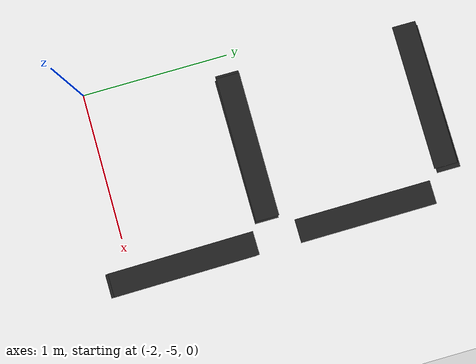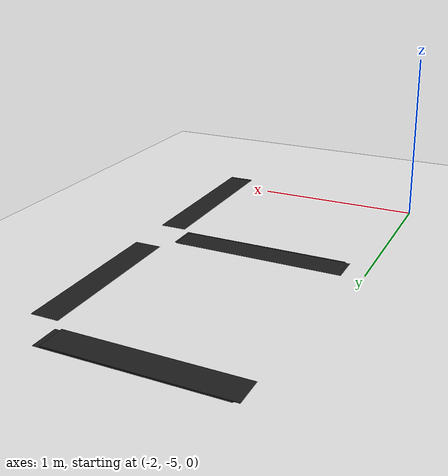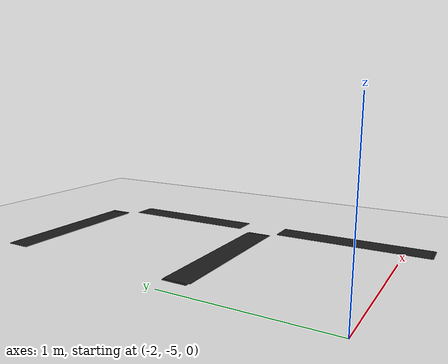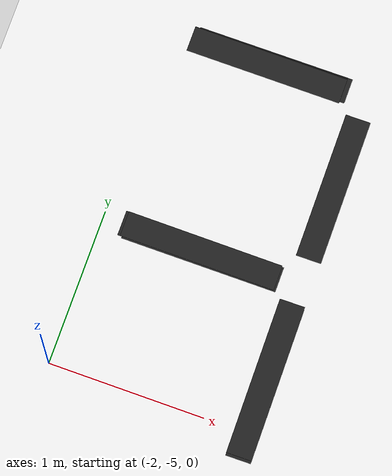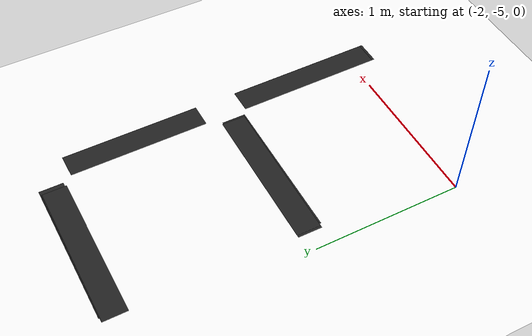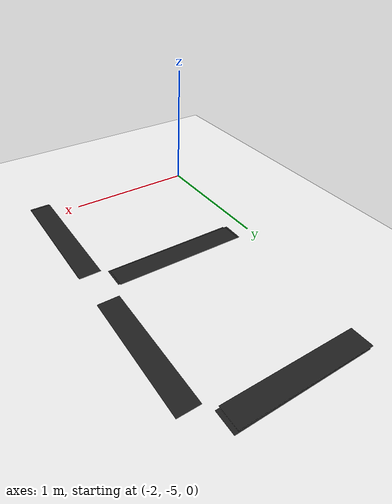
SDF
<sdf version="1.7">
 <world name="default">
  <model name="ground_plane">
   <static>1</static>
   <link name="link">
    <collision name="collision">
     <geometry><plane><normal>0 0 1</normal><size>100 100</size></plane></geometry>
     <surface>
      <contact><collide_bitmask>65535</collide_bitmask></contact>
      <friction><ode><mu>100</mu><mu2>50</mu2></ode></friction>
     </surface>
    </collision>
    <visual name="visual">
     <cast_shadows>0</cast_shadows>
     <geometry><plane><normal>0 0 1</normal><size>100 100</size></plane></geometry>
     <material>
      <script><uri>file://media/materials/scripts/gazebo.material</uri><name>Gazebo/White</name></script>
     </material>
    </visual>
   </link>
  </model>
  <model name="unit_box_clone_0_clone_clone_0_clone_0">
   <link name="link">
    <inertial>
     <mass>1</mass>
     <inertia>
      <ixx>0.166667</ixx>
      <ixy>0</ixy>
      <ixz>0</ixz>
      <iyy>0.166667</iyy>
      <iyz>0</iyz>
      <izz>0.166667</izz>
     </inertia>
    </inertial>
    <visual name="visual">
     <geometry><box><size>1 0.160776 0.000937</size></box></geometry>
     <material>
      <script><name>Gazebo/Black</name><uri>file://media/materials/scripts/gazebo.material</uri></script>
      <shader type="pixel"><normal_map>__default__</normal_map></shader>
      <ambient>0 0 0 1</ambient>
      <diffuse>0 0 0 1</diffuse>
      <specular>0.1 0.1 0.1 1</specular>
      <emissive>0 0 0 1</emissive>
     </material>
    </visual>
    <collision name="collision">
     <geometry><box><size>1 0.160776 0.000937</size></box></geometry>
     <surface>
      <friction>
       <ode><mu>1</mu><mu2>1</mu2><fdir1>0 0 0</fdir1><slip1>0</slip1><slip2>0</slip2></ode>
       <torsional>
        <coefficient>1</coefficient>
        <patch_radius>0</patch_radius>
        <surface_radius>0</surface_radius>
        <use_patch_radius>1</use_patch_radius>
        <ode><slip>0</slip></ode>
       </torsional>
      </friction>
      <bounce><restitution_coefficient>0</restitution_coefficient><threshold>1e+06</threshold></bounce>
      <contact>
       <collide_without_contact>0</collide_without_contact>
       <collide_without_contact_bitmask>1</collide_without_contact_bitmask>
       <collide_bitmask>1</collide_bitmask>
       <ode>
        <soft_cfm>0</soft_cfm>
        <soft_erp>0.2</soft_erp>
        <kp>1e+13</kp>
        <kd>1</kd>
        <max_vel>0.01</max_vel>
        <min_depth>0</min_depth>
       </ode>
       <bullet>
        <split_impulse>1</split_impulse>
        <split_impulse_penetration_threshold>-0.01</split_impulse_penetration_threshold>
        <soft_cfm>0</soft_cfm>
        <soft_erp>0.2</soft_erp>
        <kp>1e+13</kp>
        <kd>1</kd>
       </bullet>
      </contact>
     </surface>
    </collision>
   </link>
   <static>0</static>
   <pose>-1.3779 -2.78631 0.002306 3.1e-05 9e-06 -0.001043</pose>
  </model>
  <model name="unit_box_clone_0_clone_clone_0_clone_clone_clone_1">
   <link name="link">
    <inertial>
     <mass>1</mass>
     <inertia>
      <ixx>0.166667</ixx>
      <ixy>0</ixy>
      <ixz>0</ixz>
      <iyy>0.166667</iyy>
      <iyz>0</iyz>
      <izz>0.166667</izz>
     </inertia>
    </inertial>
    <visual name="visual">
     <geometry><box><size>1 0.160776 0.000937</size></box></geometry>
     <material>
      <script><name>Gazebo/Black</name><uri>file://media/materials/scripts/gazebo.material</uri></script>
      <shader type="pixel"><normal_map>__default__</normal_map></shader>
      <ambient>0 0 0 1</ambient>
      <diffuse>0 0 0 1</diffuse>
      <specular>0.1 0.1 0.1 1</specular>
      <emissive>0 0 0 1</emissive>
     </material>
    </visual>
    <collision name="collision">
     <geometry><box><size>1 0.160776 0.000937</size></box></geometry>
     <surface>
      <friction>
       <ode><mu>1</mu><mu2>1</mu2><fdir1>0 0 0</fdir1><slip1>0</slip1><slip2>0</slip2></ode>
       <torsional>
        <coefficient>1</coefficient>
        <patch_radius>0</patch_radius>
        <surface_radius>0</surface_radius>
        <use_patch_radius>1</use_patch_radius>
        <ode><slip>0</slip></ode>
       </torsional>
      </friction>
      <bounce><restitution_coefficient>0</restitution_coefficient><threshold>1e+06</threshold></bounce>
      <contact>
       <collide_without_contact>0</collide_without_contact>
       <collide_without_contact_bitmask>1</collide_without_contact_bitmask>
       <collide_bitmask>1</collide_bitmask>
       <ode>
        <soft_cfm>0</soft_cfm>
        <soft_erp>0.2</soft_erp>
        <kp>1e+13</kp>
        <kd>1</kd>
        <max_vel>0.01</max_vel>
        <min_depth>0</min_depth>
       </ode>
       <bullet>
        <split_impulse>1</split_impulse>
        <split_impulse_penetration_threshold>-0.01</split_impulse_penetration_threshold>
        <soft_cfm>0</soft_cfm>
        <soft_erp>0.2</soft_erp>
        <kp>1e+13</kp>
        <kd>1</kd>
       </bullet>
      </contact>
     </surface>
    </collision>
   </link>
   <static>0</static>
   <pose>-0.723808 -4.66654 0.00046 1e-06 -1.7e-05 -1.56214</pose>
  </model>
  <model name="unit_box_clone_0_clone_clone_0_clone_1_clone">
   <link name="link">
    <inertial>
     <mass>1</mass>
     <inertia>
      <ixx>0.166667</ixx>
      <ixy>0</ixy>
      <ixz>0</ixz>
      <iyy>0.166667</iyy>
      <iyz>0</iyz>
      <izz>0.166667</izz>
     </inertia>
    </inertial>
    <visual name="visual">
     <geometry><box><size>1 0.160776 0.000937</size></box></geometry>
     <material>
      <script><name>Gazebo/Black</name><uri>file://media/materials/scripts/gazebo.material</uri></script>
      <shader type="pixel"><normal_map>__default__</normal_map></shader>
      <ambient>0 0 0 1</ambient>
      <diffuse>0 0 0 1</diffuse>
      <specular>0.1 0.1 0.1 1</specular>
      <emissive>0 0 0 1</emissive>
     </material>
    </visual>
    <collision name="collision">
     <geometry><box><size>1 0.160776 0.000937</size></box></geometry>
     <surface>
      <friction>
       <ode><mu>1</mu><mu2>1</mu2><fdir1>0 0 0</fdir1><slip1>0</slip1><slip2>0</slip2></ode>
       <torsional>
        <coefficient>1</coefficient>
        <patch_radius>0</patch_radius>
        <surface_radius>0</surface_radius>
        <use_patch_radius>1</use_patch_radius>
        <ode><slip>0</slip></ode>
       </torsional>
      </friction>
      <bounce><restitution_coefficient>0</restitution_coefficient><threshold>1e+06</threshold></bounce>
      <contact>
       <collide_without_contact>0</collide_without_contact>
       <collide_without_contact_bitmask>1</collide_without_contact_bitmask>
       <collide_bitmask>1</collide_bitmask>
       <ode>
        <soft_cfm>0</soft_cfm>
        <soft_erp>0.2</soft_erp>
        <kp>1e+13</kp>
        <kd>1</kd>
        <max_vel>0.01</max_vel>
        <min_depth>0</min_depth>
       </ode>
       <bullet>
        <split_impulse>1</split_impulse>
        <split_impulse_penetration_threshold>-0.01</split_impulse_penetration_threshold>
        <soft_cfm>0</soft_cfm>
        <soft_erp>0.2</soft_erp>
        <kp>1e+13</kp>
        <kd>1</kd>
       </bullet>
      </contact>
     </surface>
    </collision>
   </link>
   <static>0</static>
   <pose>-1.38042 -4.03185 0.000408 0 0.000121 -0.004623</pose>
  </model>
  <model name="unit_box_clone_0_clone_clone_0_clone_0_clone">
   <link name="link">
    <inertial>
     <mass>1</mass>
     <inertia>
      <ixx>0.166667</ixx>
      <ixy>0</ixy>
      <ixz>0</ixz>
      <iyy>0.166667</iyy>
      <iyz>0</iyz>
      <izz>0.166667</izz>
     </inertia>
    </inertial>
    <visual name="visual">
     <geometry><box><size>1 0.160776 0.000937</size></box></geometry>
     <material>
      <script><name>Gazebo/Black</name><uri>file://media/materials/scripts/gazebo.material</uri></script>
      <shader type="pixel"><normal_map>__default__</normal_map></shader>
      <ambient>0 0 0 1</ambient>
      <diffuse>0 0 0 1</diffuse>
      <specular>0.1 0.1 0.1 1</specular>
      <emissive>0 0 0 1</emissive>
     </material>
    </visual>
    <collision name="collision">
     <geometry><box><size>1 0.160776 0.000937</size></box></geometry>
     <surface>
      <friction>
       <ode><mu>1</mu><mu2>1</mu2><fdir1>0 0 0</fdir1><slip1>0</slip1><slip2>0</slip2></ode>
       <torsional>
        <coefficient>1</coefficient>
        <patch_radius>0</patch_radius>
        <surface_radius>0</surface_radius>
        <use_patch_radius>1</use_patch_radius>
        <ode><slip>0</slip></ode>
       </torsional>
      </friction>
      <bounce><restitution_coefficient>0</restitution_coefficient><threshold>1e+06</threshold></bounce>
      <contact>
       <collide_without_contact>0</collide_without_contact>
       <collide_without_contact_bitmask>1</collide_without_contact_bitmask>
       <collide_bitmask>1</collide_bitmask>
       <ode>
        <soft_cfm>0</soft_cfm>
        <soft_erp>0.2</soft_erp>
        <kp>1e+13</kp>
        <kd>1</kd>
        <max_vel>0.01</max_vel>
        <min_depth>0</min_depth>
       </ode>
       <bullet>
        <split_impulse>1</split_impulse>
        <split_impulse_penetration_threshold>-0.01</split_impulse_penetration_threshold>
        <soft_cfm>0</soft_cfm>
        <soft_erp>0.2</soft_erp>
        <kp>1e+13</kp>
        <kd>1</kd>
       </bullet>
      </contact>
     </surface>
    </collision>
   </link>
   <static>0</static>
   <pose>-1.37775 -2.7831 0.001367 5e-06 8e-06 0.002228</pose>
  </model>
  <model name="unit_box_clone_0_clone_clone_0_clone_0_clone_0">
   <link name="link">
    <inertial>
     <mass>1</mass>
     <inertia>
      <ixx>0.166667</ixx>
      <ixy>0</ixy>
      <ixz>0</ixz>
      <iyy>0.166667</iyy>
      <iyz>0</iyz>
      <izz>0.166667</izz>
     </inertia>
    </inertial>
    <visual name="visual">
     <geometry><box><size>1 0.160776 0.000937</size></box></geometry>
     <material>
      <script><name>Gazebo/Black</name><uri>file://media/materials/scripts/gazebo.material</uri></script>
      <shader type="pixel"><normal_map>__default__</normal_map></shader>
      <ambient>0 0 0 1</ambient>
      <diffuse>0 0 0 1</diffuse>
      <specular>0.1 0.1 0.1 1</specular>
      <emissive>0 0 0 1</emissive>
     </material>
    </visual>
    <collision name="collision">
     <geometry><box><size>1 0.160776 0.000937</size></box></geometry>
     <surface>
      <friction>
       <ode><mu>1</mu><mu2>1</mu2><fdir1>0 0 0</fdir1><slip1>0</slip1><slip2>0</slip2></ode>
       <torsional>
        <coefficient>1</coefficient>
        <patch_radius>0</patch_radius>
        <surface_radius>0</surface_radius>
        <use_patch_radius>1</use_patch_radius>
        <ode><slip>0</slip></ode>
       </torsional>
      </friction>
      <bounce><restitution_coefficient>0</restitution_coefficient><threshold>1e+06</threshold></bounce>
      <contact>
       <collide_without_contact>0</collide_without_contact>
       <collide_without_contact_bitmask>1</collide_without_contact_bitmask>
       <collide_bitmask>1</collide_bitmask>
       <ode>
        <soft_cfm>0</soft_cfm>
        <soft_erp>0.2</soft_erp>
        <kp>1e+13</kp>
        <kd>1</kd>
        <max_vel>0.01</max_vel>
        <min_depth>0</min_depth>
       </ode>
       <bullet>
        <split_impulse>1</split_impulse>
        <split_impulse_penetration_threshold>-0.01</split_impulse_penetration_threshold>
        <soft_cfm>0</soft_cfm>
        <soft_erp>0.2</soft_erp>
        <kp>1e+13</kp>
        <kd>1</kd>
       </bullet>
      </contact>
     </surface>
    </collision>
   </link>
   <static>0</static>
   <pose>-1.34717 -2.7773 0.00043 5e-06 8e-06 0.001861</pose>
  </model>
  <model name="unit_box_clone_0_clone_clone_0_clone_1_clone_clone">
   <link name="link">
    <inertial>
     <mass>1</mass>
     <inertia>
      <ixx>0.166667</ixx>
      <ixy>0</ixy>
      <ixz>0</ixz>
      <iyy>0.166667</iyy>
      <iyz>0</iyz>
      <izz>0.166667</izz>
     </inertia>
    </inertial>
    <visual name="visual">
     <geometry><box><size>1 0.160776 0.000937</size></box></geometry>
     <material>
      <script><name>Gazebo/Black</name><uri>file://media/materials/scripts/gazebo.material</uri></script>
      <shader type="pixel"><normal_map>__default__</normal_map></shader>
      <ambient>0 0 0 1</ambient>
      <diffuse>0 0 0 1</diffuse>
      <specular>0.1 0.1 0.1 1</specular>
      <emissive>0 0 0 1</emissive>
     </material>
    </visual>
    <collision name="collision">
     <geometry><box><size>1 0.160776 0.000937</size></box></geometry>
     <surface>
      <friction>
       <ode><mu>1</mu><mu2>1</mu2><fdir1>0 0 0</fdir1><slip1>0</slip1><slip2>0</slip2></ode>
       <torsional>
        <coefficient>1</coefficient>
        <patch_radius>0</patch_radius>
        <surface_radius>0</surface_radius>
        <use_patch_radius>1</use_patch_radius>
        <ode><slip>0</slip></ode>
       </torsional>
      </friction>
      <bounce><restitution_coefficient>0</restitution_coefficient><threshold>1e+06</threshold></bounce>
      <contact>
       <collide_without_contact>0</collide_without_contact>
       <collide_without_contact_bitmask>1</collide_without_contact_bitmask>
       <collide_bitmask>1</collide_bitmask>
       <ode>
        <soft_cfm>0</soft_cfm>
        <soft_erp>0.2</soft_erp>
        <kp>1e+13</kp>
        <kd>1</kd>
        <max_vel>0.01</max_vel>
        <min_depth>0</min_depth>
       </ode>
       <bullet>
        <split_impulse>1</split_impulse>
        <split_impulse_penetration_threshold>-0.01</split_impulse_penetration_threshold>
        <soft_cfm>0</soft_cfm>
        <soft_erp>0.2</soft_erp>
        <kp>1e+13</kp>
        <kd>1</kd>
       </bullet>
      </contact>
     </surface>
    </collision>
   </link>
   <static>0</static>
   <pose>-1.35201 -4.03987 0.001283 1e-06 -5e-06 3.9e-05</pose>
  </model>
  <model name="unit_box_clone_0_clone_clone_0_clone_1_clone_clone_0">
   <link name="link">
    <inertial>
     <mass>1</mass>
     <inertia>
      <ixx>0.166667</ixx>
      <ixy>0</ixy>
      <ixz>0</ixz>
      <iyy>0.166667</iyy>
      <iyz>0</iyz>
      <izz>0.166667</izz>
     </inertia>
    </inertial>
    <visual name="visual">
     <geometry><box><size>1 0.160776 0.000937</size></box></geometry>
     <material>
      <script><name>Gazebo/Black</name><uri>file://media/materials/scripts/gazebo.material</uri></script>
      <shader type="pixel"><normal_map>__default__</normal_map></shader>
      <ambient>0 0 0 1</ambient>
      <diffuse>0 0 0 1</diffuse>
      <specular>0.1 0.1 0.1 1</specular>
      <emissive>0 0 0 1</emissive>
     </material>
    </visual>
    <collision name="collision">
     <geometry><box><size>1 0.160776 0.000937</size></box></geometry>
     <surface>
      <friction>
       <ode><mu>1</mu><mu2>1</mu2><fdir1>0 0 0</fdir1><slip1>0</slip1><slip2>0</slip2></ode>
       <torsional>
        <coefficient>1</coefficient>
        <patch_radius>0</patch_radius>
        <surface_radius>0</surface_radius>
        <use_patch_radius>1</use_patch_radius>
        <ode><slip>0</slip></ode>
       </torsional>
      </friction>
      <bounce><restitution_coefficient>0</restitution_coefficient><threshold>1e+06</threshold></bounce>
      <contact>
       <collide_without_contact>0</collide_without_contact>
       <collide_without_contact_bitmask>1</collide_without_contact_bitmask>
       <collide_bitmask>1</collide_bitmask>
       <ode>
        <soft_cfm>0</soft_cfm>
        <soft_erp>0.2</soft_erp>
        <kp>1e+13</kp>
        <kd>1</kd>
        <max_vel>0.01</max_vel>
        <min_depth>0</min_depth>
       </ode>
       <bullet>
        <split_impulse>1</split_impulse>
        <split_impulse_penetration_threshold>-0.01</split_impulse_penetration_threshold>
        <soft_cfm>0</soft_cfm>
        <soft_erp>0.2</soft_erp>
        <kp>1e+13</kp>
        <kd>1</kd>
       </bullet>
      </contact>
     </surface>
    </collision>
   </link>
   <static>0</static>
   <pose>-1.36475 -4.03015 0.002211 2e-06 -2.2e-05 -0.003771</pose>
  </model>
  <model name="unit_box_clone_0_clone_clone_0_clone_clone_clone_1_clone">
   <link name="link">
    <inertial>
     <mass>1</mass>
     <inertia>
      <ixx>0.166667</ixx>
      <ixy>0</ixy>
      <ixz>0</ixz>
      <iyy>0.166667</iyy>
      <iyz>0</iyz>
      <izz>0.166667</izz>
     </inertia>
    </inertial>
    <visual name="visual">
     <geometry><box><size>1 0.160776 0.000937</size></box></geometry>
     <material>
      <script><name>Gazebo/Black</name><uri>file://media/materials/scripts/gazebo.material</uri></script>
      <shader type="pixel"><normal_map>__default__</normal_map></shader>
      <ambient>0 0 0 1</ambient>
      <diffuse>0 0 0 1</diffuse>
      <specular>0.1 0.1 0.1 1</specular>
      <emissive>0 0 0 1</emissive>
     </material>
    </visual>
    <collision name="collision">
     <geometry><box><size>1 0.160776 0.000937</size></box></geometry>
     <surface>
      <friction>
       <ode><mu>1</mu><mu2>1</mu2><fdir1>0 0 0</fdir1><slip1>0</slip1><slip2>0</slip2></ode>
       <torsional>
        <coefficient>1</coefficient>
        <patch_radius>0</patch_radius>
        <surface_radius>0</surface_radius>
        <use_patch_radius>1</use_patch_radius>
        <ode><slip>0</slip></ode>
       </torsional>
      </friction>
      <bounce><restitution_coefficient>0</restitution_coefficient><threshold>1e+06</threshold></bounce>
      <contact>
       <collide_without_contact>0</collide_without_contact>
       <collide_without_contact_bitmask>1</collide_without_contact_bitmask>
       <collide_bitmask>1</collide_bitmask>
       <ode>
        <soft_cfm>0</soft_cfm>
        <soft_erp>0.2</soft_erp>
        <kp>1e+13</kp>
        <kd>1</kd>
        <max_vel>0.01</max_vel>
        <min_depth>0</min_depth>
       </ode>
       <bullet>
        <split_impulse>1</split_impulse>
        <split_impulse_penetration_threshold>-0.01</split_impulse_penetration_threshold>
        <soft_cfm>0</soft_cfm>
        <soft_erp>0.2</soft_erp>
        <kp>1e+13</kp>
        <kd>1</kd>
       </bullet>
      </contact>
     </surface>
    </collision>
   </link>
   <static>0</static>
   <pose>-0.725728 -4.64886 0.002177 5e-06 5.6e-05 -1.56182</pose>
  </model>
  <model name="unit_box_clone_0_clone_clone_0_clone_clone_clone_2_clone_clone">
   <link name="link">
    <inertial>
     <mass>1</mass>
     <inertia>
      <ixx>0.166667</ixx>
      <ixy>0</ixy>
      <ixz>0</ixz>
      <iyy>0.166667</iyy>
      <iyz>0</iyz>
      <izz>0.166667</izz>
     </inertia>
    </inertial>
    <visual name="visual">
     <geometry><box><size>0.939585 0.160776 0.000937</size></box></geometry>
     <material>
      <script><name>Gazebo/Black</name><uri>file://media/materials/scripts/gazebo.material</uri></script>
      <shader type="pixel"><normal_map>__default__</normal_map></shader>
      <ambient>0 0 0 1</ambient>
      <diffuse>0 0 0 1</diffuse>
      <specular>0.1 0.1 0.1 1</specular>
      <emissive>0 0 0 1</emissive>
     </material>
    </visual>
    <collision name="collision">
     <geometry><box><size>0.939585 0.160776 0.000937</size></box></geometry>
     <surface>
      <friction>
       <ode><mu>1</mu><mu2>1</mu2><fdir1>0 0 0</fdir1><slip1>0</slip1><slip2>0</slip2></ode>
       <torsional>
        <coefficient>1</coefficient>
        <patch_radius>0</patch_radius>
        <surface_radius>0</surface_radius>
        <use_patch_radius>1</use_patch_radius>
        <ode><slip>0</slip></ode>
       </torsional>
      </friction>
      <bounce><restitution_coefficient>0</restitution_coefficient><threshold>1e+06</threshold></bounce>
      <contact>
       <collide_without_contact>0</collide_without_contact>
       <collide_without_contact_bitmask>1</collide_without_contact_bitmask>
       <collide_bitmask>1</collide_bitmask>
       <ode>
        <soft_cfm>0</soft_cfm>
        <soft_erp>0.2</soft_erp>
        <kp>1e+13</kp>
        <kd>1</kd>
        <max_vel>0.01</max_vel>
        <min_depth>0</min_depth>
       </ode>
       <bullet>
        <split_impulse>1</split_impulse>
        <split_impulse_penetration_threshold>-0.01</split_impulse_penetration_threshold>
        <soft_cfm>0</soft_cfm>
        <soft_erp>0.2</soft_erp>
        <kp>1e+13</kp>
        <kd>1</kd>
       </bullet>
      </contact>
     </surface>
    </collision>
   </link>
   <static>0</static>
   <pose>-0.730213 -3.39069 0.002343 7e-06 -1e-06 -1.56627</pose>
  </model>
 </world>
</sdf>
